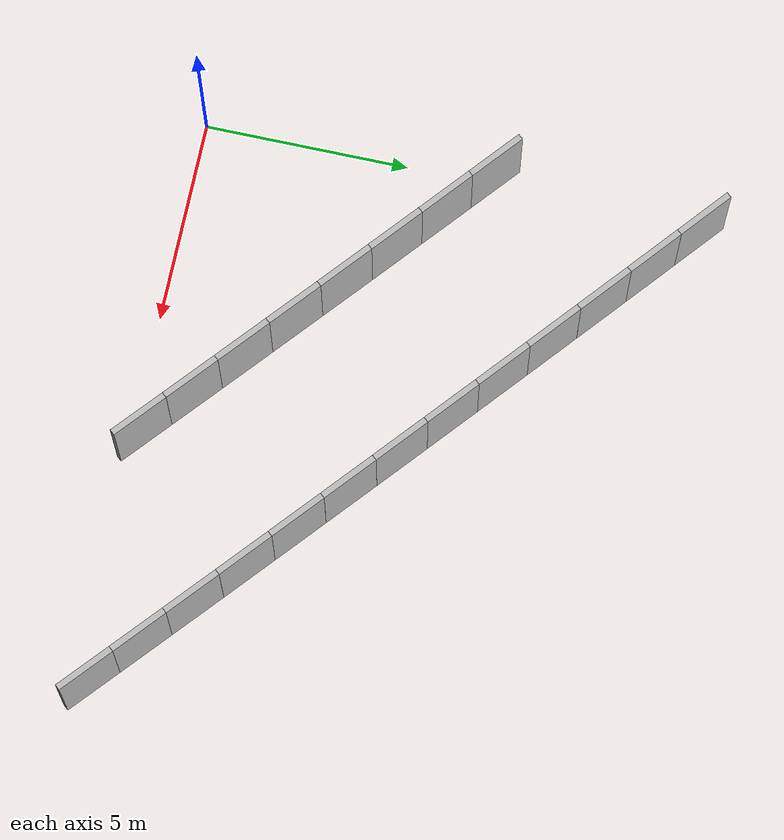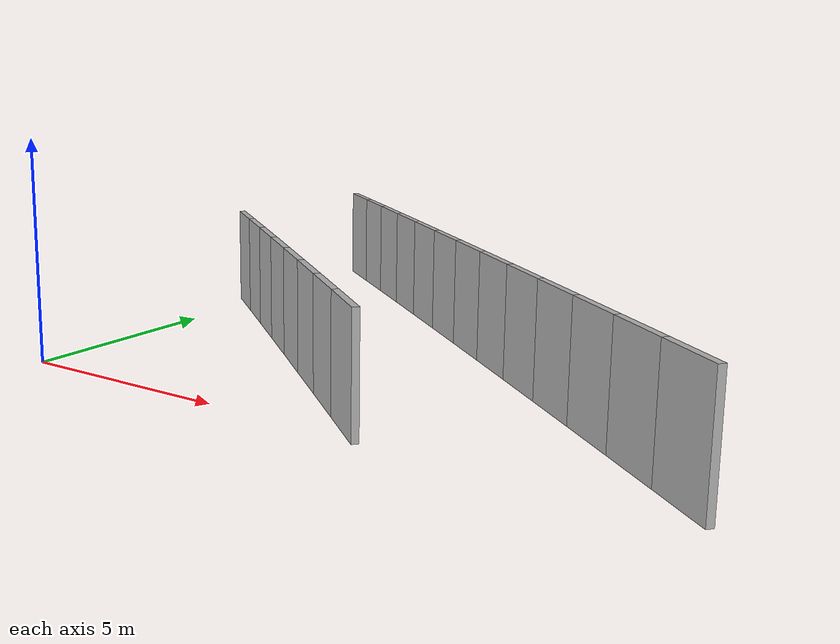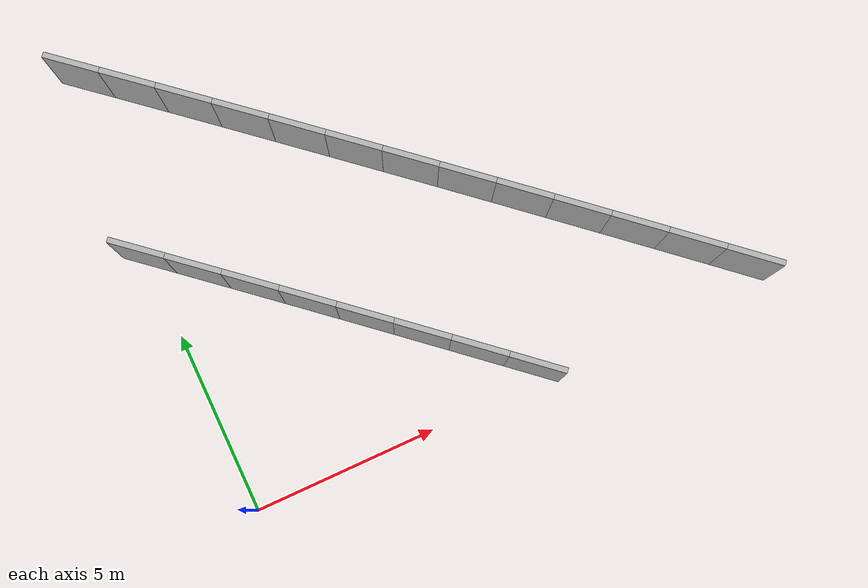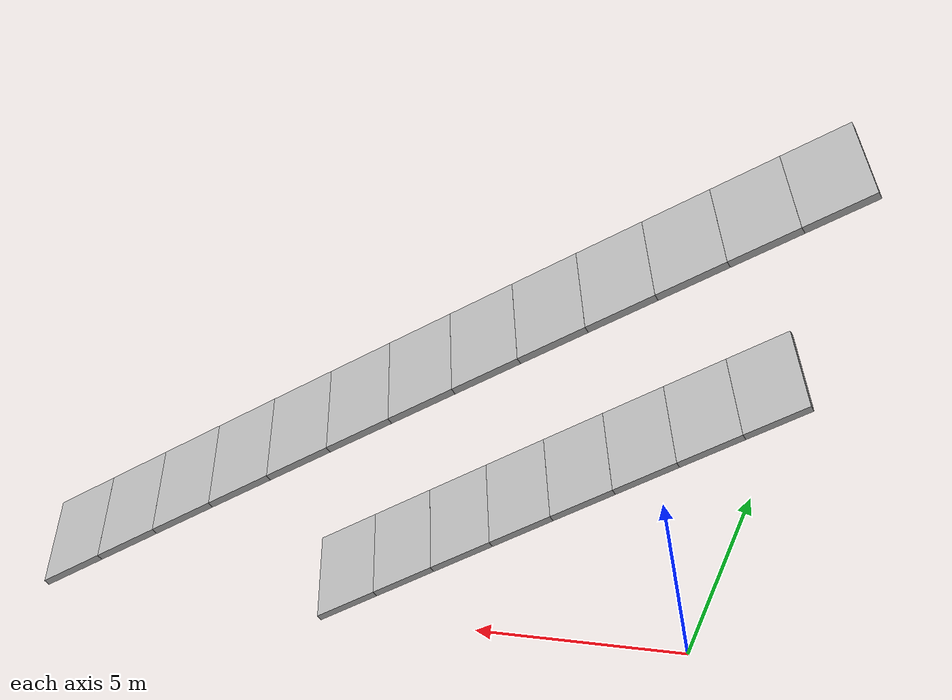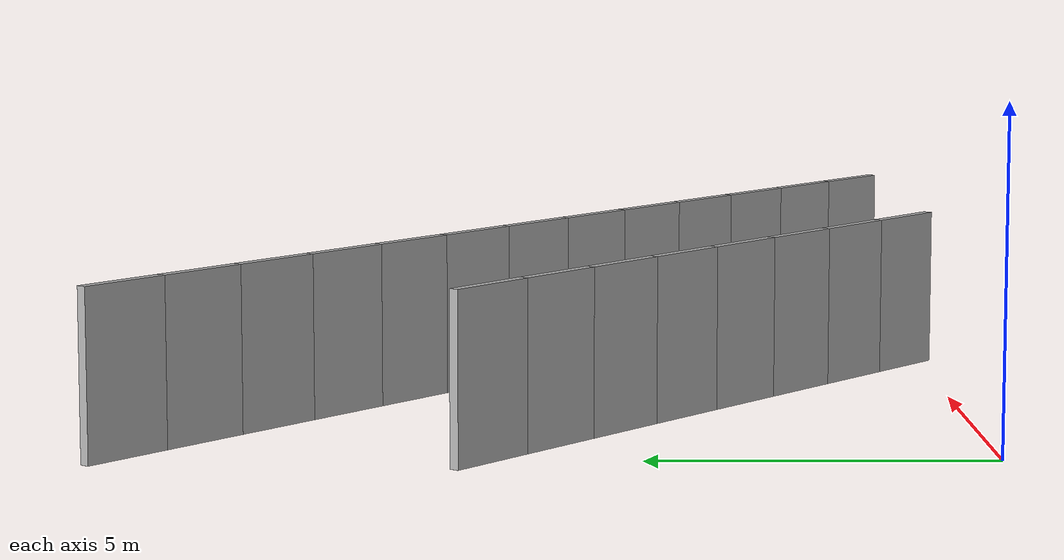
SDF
<?xml version="1.0" ?>
<sdf version="1.6">
  <model name="sps_3942">
    <pose frame="">0 0 0 0 -0 0</pose>
    <static>1</static>
    <self_collide>0</self_collide>
    <allow_auto_disable>0</allow_auto_disable>
    <link name="Wall10463">
      <kinematic>0</kinematic>
      <gravity>1</gravity>
      <self_collide>0</self_collide>
      <collision name="collision">
        <geometry>
          <box>
            <size>1.49645 0.15 2.5</size>
          </box>
        </geometry>
        <pose frame="">0 0 0 0 -0 0</pose>
      </collision>
      <visual name="visual">
        <geometry>
          <box>
            <size>1.49645 0.15 2.5</size>
          </box>
        </geometry>
        <pose frame="">0 0 0 0 -0 0</pose>
        <cast_shadows>1</cast_shadows>
        <transparency>0.0</transparency>
      </visual>
      <pose frame="">8.00634 0.326583 1.25 0 -0 2.42807</pose>
    </link>
    <link name="Wall10464">
      <kinematic>0</kinematic>
      <gravity>1</gravity>
      <self_collide>0</self_collide>
      <collision name="collision">
        <geometry>
          <box>
            <size>1.49658 0.15 2.5</size>
          </box>
        </geometry>
        <pose frame="">0 0 0 0 -0 0</pose>
      </collision>
      <visual name="visual">
        <geometry>
          <box>
            <size>1.49658 0.15 2.5</size>
          </box>
        </geometry>
        <pose frame="">0 0 0 0 -0 0</pose>
        <cast_shadows>1</cast_shadows>
        <transparency>0.0</transparency>
      </visual>
      <pose frame="">6.87414 1.30519 1.25 0 -0 2.4296</pose>
    </link>
    <link name="Wall10465">
      <kinematic>0</kinematic>
      <gravity>1</gravity>
      <self_collide>0</self_collide>
      <collision name="collision">
        <geometry>
          <box>
            <size>1.49636 0.15 2.5</size>
          </box>
        </geometry>
        <pose frame="">0 0 0 0 -0 0</pose>
      </collision>
      <visual name="visual">
        <geometry>
          <box>
            <size>1.49636 0.15 2.5</size>
          </box>
        </geometry>
        <pose frame="">0 0 0 0 -0 0</pose>
        <cast_shadows>1</cast_shadows>
        <transparency>0.0</transparency>
      </visual>
      <pose frame="">5.74044 2.282 1.25 0 -0 2.4312</pose>
    </link>
    <link name="Wall10466">
      <kinematic>0</kinematic>
      <gravity>1</gravity>
      <self_collide>0</self_collide>
      <collision name="collision">
        <geometry>
          <box>
            <size>1.49677 0.15 2.5</size>
          </box>
        </geometry>
        <pose frame="">0 0 0 0 -0 0</pose>
      </collision>
      <visual name="visual">
        <geometry>
          <box>
            <size>1.49677 0.15 2.5</size>
          </box>
        </geometry>
        <pose frame="">0 0 0 0 -0 0</pose>
        <cast_shadows>1</cast_shadows>
        <transparency>0.0</transparency>
      </visual>
      <pose frame="">4.60525 3.25722 1.25 0 -0 2.43251</pose>
    </link>
    <link name="Wall10467">
      <kinematic>0</kinematic>
      <gravity>1</gravity>
      <self_collide>0</self_collide>
      <collision name="collision">
        <geometry>
          <box>
            <size>1.49639 0.15 2.5</size>
          </box>
        </geometry>
        <pose frame="">0 0 0 0 -0 0</pose>
      </collision>
      <visual name="visual">
        <geometry>
          <box>
            <size>1.49639 0.15 2.5</size>
          </box>
        </geometry>
        <pose frame="">0 0 0 0 -0 0</pose>
        <cast_shadows>1</cast_shadows>
        <transparency>0.0</transparency>
      </visual>
      <pose frame="">3.46847 4.23061 1.25 0 -0 2.43444</pose>
    </link>
    <link name="Wall10468">
      <kinematic>0</kinematic>
      <gravity>1</gravity>
      <self_collide>0</self_collide>
      <collision name="collision">
        <geometry>
          <box>
            <size>1.49647 0.15 2.5</size>
          </box>
        </geometry>
        <pose frame="">0 0 0 0 -0 0</pose>
      </collision>
      <visual name="visual">
        <geometry>
          <box>
            <size>1.49647 0.15 2.5</size>
          </box>
        </geometry>
        <pose frame="">0 0 0 0 -0 0</pose>
        <cast_shadows>1</cast_shadows>
        <transparency>0.0</transparency>
      </visual>
      <pose frame="">2.33016 5.20198 1.25 0 -0 2.43588</pose>
    </link>
    <link name="Wall10469">
      <kinematic>0</kinematic>
      <gravity>1</gravity>
      <self_collide>0</self_collide>
      <collision name="collision">
        <geometry>
          <box>
            <size>1.49637 0.15 2.5</size>
          </box>
        </geometry>
        <pose frame="">0 0 0 0 -0 0</pose>
      </collision>
      <visual name="visual">
        <geometry>
          <box>
            <size>1.49637 0.15 2.5</size>
          </box>
        </geometry>
        <pose frame="">0 0 0 0 -0 0</pose>
        <cast_shadows>1</cast_shadows>
        <transparency>0.0</transparency>
      </visual>
      <pose frame="">1.19036 6.17158 1.25 0 -0 2.43753</pose>
    </link>
    <link name="Wall10470">
      <kinematic>0</kinematic>
      <gravity>1</gravity>
      <self_collide>0</self_collide>
      <collision name="collision">
        <geometry>
          <box>
            <size>1.49644 0.15 2.5</size>
          </box>
        </geometry>
        <pose frame="">0 0 0 0 -0 0</pose>
      </collision>
      <visual name="visual">
        <geometry>
          <box>
            <size>1.49644 0.15 2.5</size>
          </box>
        </geometry>
        <pose frame="">0 0 0 0 -0 0</pose>
        <cast_shadows>1</cast_shadows>
        <transparency>0.0</transparency>
      </visual>
      <pose frame="">0.0489724 7.1393 1.25 0 -0 2.43918</pose>
    </link>
    <link name="Wall11057">
      <kinematic>0</kinematic>
      <gravity>1</gravity>
      <self_collide>0</self_collide>
      <collision name="collision">
        <geometry>
          <box>
            <size>1.50326 0.15 2.5</size>
          </box>
        </geometry>
        <pose frame="">0 0 0 0 -0 0</pose>
      </collision>
      <visual name="visual">
        <geometry>
          <box>
            <size>1.50326 0.15 2.5</size>
          </box>
        </geometry>
        <pose frame="">0 0 0 0 -0 0</pose>
        <cast_shadows>1</cast_shadows>
        <transparency>0.0</transparency>
      </visual>
      <pose frame="">14.1182 0.49739 1.25 0 -0 2.42322</pose>
    </link>
    <link name="Wall11058">
      <kinematic>0</kinematic>
      <gravity>1</gravity>
      <self_collide>0</self_collide>
      <collision name="collision">
        <geometry>
          <box>
            <size>1.50296 0.15 2.5</size>
          </box>
        </geometry>
        <pose frame="">0 0 0 0 -0 0</pose>
      </collision>
      <visual name="visual">
        <geometry>
          <box>
            <size>1.50296 0.15 2.5</size>
          </box>
        </geometry>
        <pose frame="">0 0 0 0 -0 0</pose>
        <cast_shadows>1</cast_shadows>
        <transparency>0.0</transparency>
      </visual>
      <pose frame="">12.9856 1.4857 1.25 0 -0 2.42494</pose>
    </link>
    <link name="Wall11059">
      <kinematic>0</kinematic>
      <gravity>1</gravity>
      <self_collide>0</self_collide>
      <collision name="collision">
        <geometry>
          <box>
            <size>1.50303 0.15 2.5</size>
          </box>
        </geometry>
        <pose frame="">0 0 0 0 -0 0</pose>
      </collision>
      <visual name="visual">
        <geometry>
          <box>
            <size>1.50303 0.15 2.5</size>
          </box>
        </geometry>
        <pose frame="">0 0 0 0 -0 0</pose>
        <cast_shadows>1</cast_shadows>
        <transparency>0.0</transparency>
      </visual>
      <pose frame="">11.8516 2.47212 1.25 0 -0 2.42643</pose>
    </link>
    <link name="Wall11060">
      <kinematic>0</kinematic>
      <gravity>1</gravity>
      <self_collide>0</self_collide>
      <collision name="collision">
        <geometry>
          <box>
            <size>1.50307 0.15 2.5</size>
          </box>
        </geometry>
        <pose frame="">0 0 0 0 -0 0</pose>
      </collision>
      <visual name="visual">
        <geometry>
          <box>
            <size>1.50307 0.15 2.5</size>
          </box>
        </geometry>
        <pose frame="">0 0 0 0 -0 0</pose>
        <cast_shadows>1</cast_shadows>
        <transparency>0.0</transparency>
      </visual>
      <pose frame="">10.7161 3.4568 1.25 0 -0 2.42807</pose>
    </link>
    <link name="Wall11061">
      <kinematic>0</kinematic>
      <gravity>1</gravity>
      <self_collide>0</self_collide>
      <collision name="collision">
        <geometry>
          <box>
            <size>1.50312 0.15 2.5</size>
          </box>
        </geometry>
        <pose frame="">0 0 0 0 -0 0</pose>
      </collision>
      <visual name="visual">
        <geometry>
          <box>
            <size>1.50312 0.15 2.5</size>
          </box>
        </geometry>
        <pose frame="">0 0 0 0 -0 0</pose>
        <cast_shadows>1</cast_shadows>
        <transparency>0.0</transparency>
      </visual>
      <pose frame="">9.57885 4.43968 1.25 0 -0 2.42965</pose>
    </link>
    <link name="Wall11062">
      <kinematic>0</kinematic>
      <gravity>1</gravity>
      <self_collide>0</self_collide>
      <collision name="collision">
        <geometry>
          <box>
            <size>1.50302 0.15 2.5</size>
          </box>
        </geometry>
        <pose frame="">0 0 0 0 -0 0</pose>
      </collision>
      <visual name="visual">
        <geometry>
          <box>
            <size>1.50302 0.15 2.5</size>
          </box>
        </geometry>
        <pose frame="">0 0 0 0 -0 0</pose>
        <cast_shadows>1</cast_shadows>
        <transparency>0.0</transparency>
      </visual>
      <pose frame="">8.44015 5.42079 1.25 0 -0 2.43115</pose>
    </link>
    <link name="Wall11063">
      <kinematic>0</kinematic>
      <gravity>1</gravity>
      <self_collide>0</self_collide>
      <collision name="collision">
        <geometry>
          <box>
            <size>1.50329 0.15 2.5</size>
          </box>
        </geometry>
        <pose frame="">0 0 0 0 -0 0</pose>
      </collision>
      <visual name="visual">
        <geometry>
          <box>
            <size>1.50329 0.15 2.5</size>
          </box>
        </geometry>
        <pose frame="">0 0 0 0 -0 0</pose>
        <cast_shadows>1</cast_shadows>
        <transparency>0.0</transparency>
      </visual>
      <pose frame="">7.29986 6.40019 1.25 0 -0 2.43275</pose>
    </link>
    <link name="Wall11064">
      <kinematic>0</kinematic>
      <gravity>1</gravity>
      <self_collide>0</self_collide>
      <collision name="collision">
        <geometry>
          <box>
            <size>1.50302 0.15 2.5</size>
          </box>
        </geometry>
        <pose frame="">0 0 0 0 -0 0</pose>
      </collision>
      <visual name="visual">
        <geometry>
          <box>
            <size>1.50302 0.15 2.5</size>
          </box>
        </geometry>
        <pose frame="">0 0 0 0 -0 0</pose>
        <cast_shadows>1</cast_shadows>
        <transparency>0.0</transparency>
      </visual>
      <pose frame="">6.15795 7.3777 1.25 0 -0 2.43446</pose>
    </link>
    <link name="Wall11065">
      <kinematic>0</kinematic>
      <gravity>1</gravity>
      <self_collide>0</self_collide>
      <collision name="collision">
        <geometry>
          <box>
            <size>1.50309 0.15 2.5</size>
          </box>
        </geometry>
        <pose frame="">0 0 0 0 -0 0</pose>
      </collision>
      <visual name="visual">
        <geometry>
          <box>
            <size>1.50309 0.15 2.5</size>
          </box>
        </geometry>
        <pose frame="">0 0 0 0 -0 0</pose>
        <cast_shadows>1</cast_shadows>
        <transparency>0.0</transparency>
      </visual>
      <pose frame="">5.01464 8.35341 1.25 0 -0 2.43579</pose>
    </link>
    <link name="Wall11066">
      <kinematic>0</kinematic>
      <gravity>1</gravity>
      <self_collide>0</self_collide>
      <collision name="collision">
        <geometry>
          <box>
            <size>1.50303 0.15 2.5</size>
          </box>
        </geometry>
        <pose frame="">0 0 0 0 -0 0</pose>
      </collision>
      <visual name="visual">
        <geometry>
          <box>
            <size>1.50303 0.15 2.5</size>
          </box>
        </geometry>
        <pose frame="">0 0 0 0 -0 0</pose>
        <cast_shadows>1</cast_shadows>
        <transparency>0.0</transparency>
      </visual>
      <pose frame="">3.86986 9.32741 1.25 0 -0 2.43746</pose>
    </link>
    <link name="Wall11067">
      <kinematic>0</kinematic>
      <gravity>1</gravity>
      <self_collide>0</self_collide>
      <collision name="collision">
        <geometry>
          <box>
            <size>1.50324 0.15 2.5</size>
          </box>
        </geometry>
        <pose frame="">0 0 0 0 -0 0</pose>
      </collision>
      <visual name="visual">
        <geometry>
          <box>
            <size>1.50324 0.15 2.5</size>
          </box>
        </geometry>
        <pose frame="">0 0 0 0 -0 0</pose>
        <cast_shadows>1</cast_shadows>
        <transparency>0.0</transparency>
      </visual>
      <pose frame="">2.72338 10.2995 1.25 0 -0 2.43918</pose>
    </link>
    <link name="Wall11068">
      <kinematic>0</kinematic>
      <gravity>1</gravity>
      <self_collide>0</self_collide>
      <collision name="collision">
        <geometry>
          <box>
            <size>1.50299 0.15 2.5</size>
          </box>
        </geometry>
        <pose frame="">0 0 0 0 -0 0</pose>
      </collision>
      <visual name="visual">
        <geometry>
          <box>
            <size>1.50299 0.15 2.5</size>
          </box>
        </geometry>
        <pose frame="">0 0 0 0 -0 0</pose>
        <cast_shadows>1</cast_shadows>
        <transparency>0.0</transparency>
      </visual>
      <pose frame="">1.57537 11.2698 1.25 0 -0 2.44063</pose>
    </link>
    <link name="Wall11069">
      <kinematic>0</kinematic>
      <gravity>1</gravity>
      <self_collide>0</self_collide>
      <collision name="collision">
        <geometry>
          <box>
            <size>1.50309 0.15 2.5</size>
          </box>
        </geometry>
        <pose frame="">0 0 0 0 -0 0</pose>
      </collision>
      <visual name="visual">
        <geometry>
          <box>
            <size>1.50309 0.15 2.5</size>
          </box>
        </geometry>
        <pose frame="">0 0 0 0 -0 0</pose>
        <cast_shadows>1</cast_shadows>
        <transparency>0.0</transparency>
      </visual>
      <pose frame="">0.425865 12.2382 1.25 0 -0 2.44238</pose>
    </link>
  </model>
</sdf>
